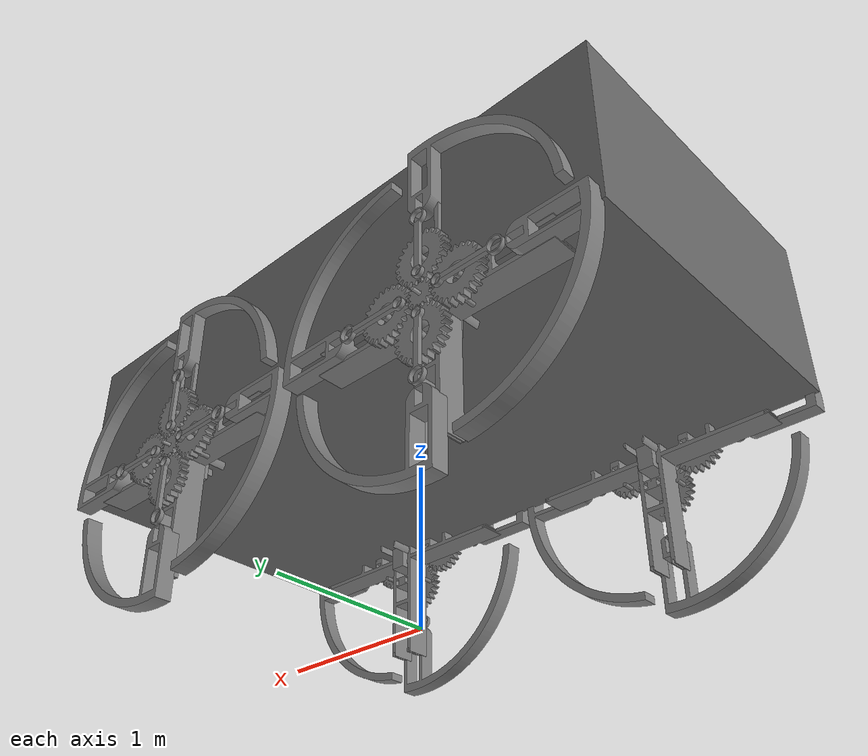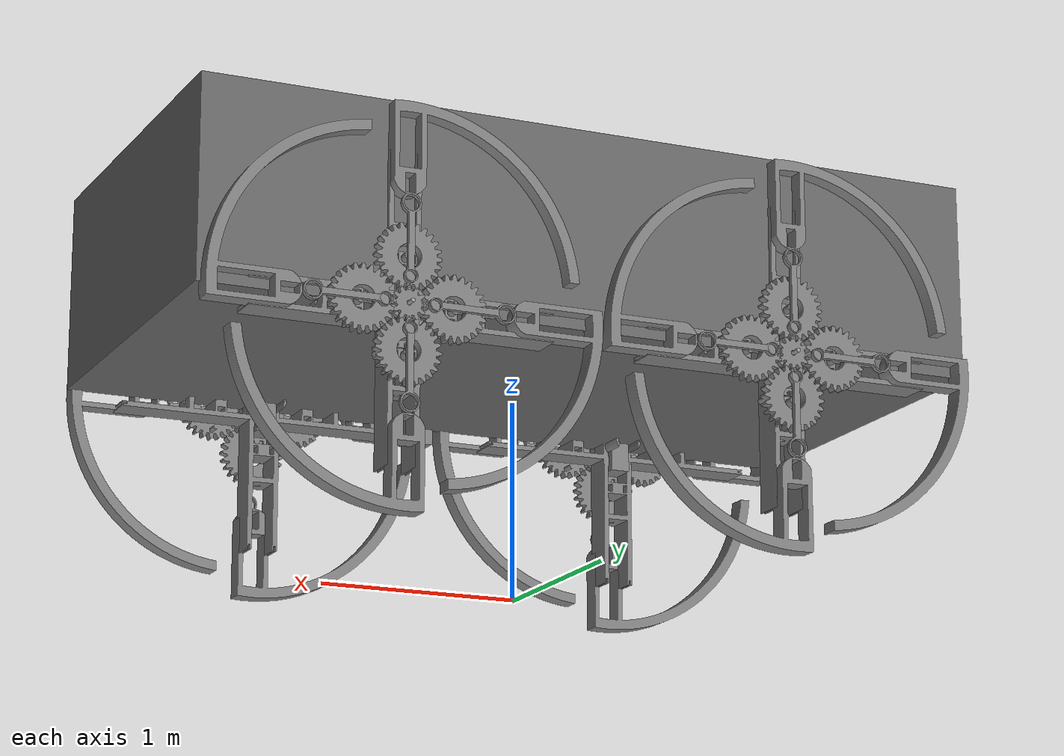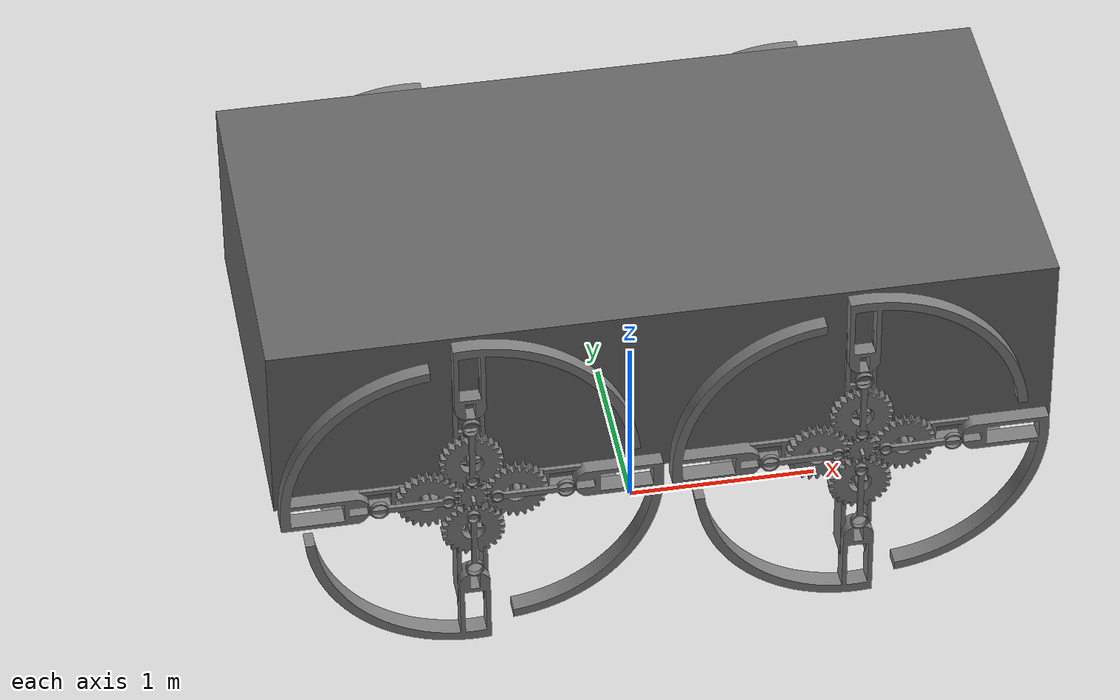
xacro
<?xml version="1.0"?>
<robot xmlns:xacro="http://www.ros.org/wiki/xacro" name="my_robot">
    <xacro:include filename="common_properties.xacro" />
    <xacro:property name="base_length" value="4" />
    <xacro:property name="base_width" value="2" />
    <xacro:property name="base_height" value="1" />
    <xacro:property name="wheel_radius" value="0.1" />
    <xacro:property name="wheel_length" value="0.05" />
  <!-- Base Link -->
    <link name="base_footprint" />
    <link name="base_link">
        <visual>
            <geometry>
                <box size="${base_length} ${base_width} ${base_height}" />
            </geometry>
            <origin xyz="0 0 ${base_height / 2.0}" rpy="0 0 0" />
            <material name="blue" />
        </visual>
        <collision>
            <geometry>
                <box size="${base_length} ${base_width} ${base_height}" />
            </geometry>
            <origin xyz="0 0 ${base_height / 2.0}" rpy="0 0 0" />
        </collision>
        <xacro:box_inertia m="5.0" l="${2*base_length}" w="${2*base_width}" h="${2*base_height}"
                           xyz="0 0 ${base_height / 2.0}" rpy="0 0 0" />
    </link>
    <joint name="base_joint" type="fixed">
        <parent link="base_footprint" />
        <child link="base_link" />
        <origin xyz="0 0 ${wheel_radius+1}" rpy="0 0 0"/>
    </joint>

   <xacro:macro name="wheel" params="dir">
  <link name="${dir}_wheel_link">
    <visual>
      <geometry>
        <cylinder radius="0.01" length="0.2"/>
      </geometry>
    </visual>

    <collision>
      <geometry>
        <cylinder radius="0.01" length="0.2"/>
      </geometry>
    </collision>
    <inertial>
      <mass value="1.0"/>
      <inertia ixx="0.01" ixy="0.0" ixz="0.0" iyy="0.01" iyz="0.0" izz="0.01"/>
    </inertial>
  </link>

  <link name="${dir}_gear_small">
    <visual>
      <geometry>
        <mesh filename="package://my_robot_description/meshes/gear_small.stl" scale="0.005 0.005 0.005"/>
      </geometry>
      <material name="gray">
        <color rgba="0.5 0.5 0.5 1"/>
      </material>
    </visual>
    <collision>
        <geometry>
        <cylinder radius="0.1" length="0.2"/>
      </geometry>
    </collision>
    <inertial>
      <mass value="0.2"/>
      <inertia ixx="0.01" ixy="0.0" ixz="0.0" iyy="0.01" iyz="0.0" izz="0.01"/>
    </inertial>
  </link>

<!--GEAR QUADS-->
  <xacro:macro name="quad" params="num">
    <link name="${dir}_quad${num}">
      <visual>
        <geometry>
          <mesh filename="package://my_robot_description/meshes/wheel_quad.stl" scale="0.005 0.005 0.005"/>
        </geometry>
        <material name="gray">
          <color rgba="0.5 0.5 0.5 1"/>
        </material>
      </visual>
      <collision>
        <geometry>
          <mesh filename="package://my_robot_description/meshes/wheel_quad.stl" scale="0.005 0.005 0.005"/>
        </geometry>
      </collision>
      <inertial>
        <mass value="1.0"/>
        <inertia  ixx="0.1" ixy="0.0" ixz="0.0" iyy="0.1" iyz="0.0" izz="0.1"/>
      </inertial>
    </link>
  </xacro:macro>

<!-- HANDLE -->
  <xacro:macro name="handle" params="num">
    <link name="${dir}_handle${num}">
      <visual>
        <geometry>
          <mesh filename="package://my_robot_description/meshes/handle_v1.stl" scale="0.005 0.005 0.005"/>
        </geometry>
        <material name="gray">
          <color rgba="0.5 0.5 0.5 1"/>
        </material>
      </visual>
      <collision>
        <geometry>
          <cylinder radius="0.01" length="0.2"/>
        </geometry>
      </collision>
      <inertial>
        <mass value="0.3"/>
        <inertia  ixx="0.01" ixy="0.0" ixz="0.0" iyy="0.01" iyz="0.0" izz="0.01"/>
      </inertial>
    </link>
  </xacro:macro>

  <!-- FOR PLUS DESIGN -->
  <link name="${dir}_plus">
    <visual>
      <geometry>
        <mesh filename="package://my_robot_description/meshes/bracket_v1.stl" scale="0.005 0.005 0.005"/>
      </geometry>
      <material name="gray">
        <color rgba="0.5 0.5 0.5 1"/>
      </material>
    </visual>
    <collision>
        <geometry>
        <cylinder radius="0.01" length="0.2"/>
      </geometry>
    </collision>
    <inertial>
      <mass value="0.4"/>
      <inertia  ixx="0.02" ixy="0.0" ixz="0.0" iyy="0.02" iyz="0.0" izz="0.02"/>
    </inertial>
  </link>

  <joint name="${dir}_bases" type="fixed">
    <parent link="${dir}_wheel_link"/>
    <child link="${dir}_plus"/>
    <origin xyz="-0.1 -0.05 -0.16" rpy="0 0 0"/>
  </joint>

<!-- GEAR BIG WITH HANDLE -->
  <xacro:macro name="gear_big" params="num">
    <link name="${dir}_gear_big${num}">
      <visual>
        <geometry>
          <mesh filename="package://my_robot_description/meshes/gear_big.stl" scale="0.005 0.005 0.005"/>
        </geometry>
        <material name="gray">
          <color rgba="0.5 0.5 0.5 1"/>
        </material>
      </visual>
      <collision>
          <geometry>
          <cylinder radius="0.1" length="0.2"/>
        </geometry>
      </collision>
      <inertial>
        <mass value="2.0"/>
        <inertia  ixx="0.2" ixy="0.0" ixz="0.0" iyy="0.2" iyz="0.0" izz="0.2"/>
      </inertial>
    </link>
    <xacro:handle num="${num}"/>
    <joint name="gear_${dir}_handle_${num}" type="fixed">
      <parent link="${dir}_gear_big${num}"/>
      <child link="${dir}_handle${num}"/>
      <origin xyz="0.1 0.0 0.05" rpy="0.0 0.0 0.0"/>
    </joint>
    <xacro:quad num="${num}"/>
    <joint name="${dir}_pris_${num}" type="prismatic">
    <parent link="${dir}_handle${num}"/>
    <child link="${dir}_quad${num}"/>
    <origin xyz="-0.220 0.0 -0.175" rpy="0 0 -1.57"/>
    <axis xyz="0 1 0"/>
    <limit lower="-0.4" upper="-0.163" effort="10" velocity="1.0"/>
    </joint>
  </xacro:macro>

  <xacro:gear_big num="1"/>
  <xacro:gear_big num="2"/>
  <xacro:gear_big num="3"/>
  <xacro:gear_big num="4"/>

  <!-- MOTOR CASING -->
  <link name="${dir}_motor_case">
    <visual>
      <geometry>
        <mesh filename="package://my_robot_description/meshes/motor_casing.stl" scale="0.005 0.005 0.005"/>
      </geometry>
      <material name="gray">
        <color rgba="0.5 0.5 0.5 1"/>
      </material>
    </visual>
    <collision>
        <geometry>
        <cylinder radius="0.01" length="0.2"/>
      </geometry>
    </collision>
    <inertial>
      <mass value="1.5"/>
      <inertia  ixx="0.1" ixy="0.0" ixz="0.0" iyy="0.1" iyz="0.0" izz="0.1"/>
    </inertial>
  </link>

  <!--FOR MOTOR AND GEAR CONNECTION-->
  <xacro:macro name="bracket2" params="num">
  <link name="${dir}_bracket2${num}">
    <visual>
      <geometry>
        <mesh filename="package://my_robot_description/meshes/bracket_v2.stl" scale="0.005 0.005 0.005"/>
      </geometry>
      <material name="gray">
        <color rgba="0.5 0.5 0.5 1"/>
      </material>
    </visual>
    <collision>
            <geometry>
        <cylinder radius="0.01" length="0.2"/>
      </geometry>
    </collision>
    <inertial>
      <mass value="0.5"/>
      <inertia  ixx="0.1" ixy="0.0" ixz="0.0" iyy="0.1" iyz="0.0" izz="0.1"/>
    </inertial>
  </link>
  </xacro:macro>

  <xacro:bracket2 num="1"/>

  <joint name="plus_joint${dir}_" type="fixed">
    <parent link="${dir}_wheel_link"/>
    <child link="${dir}_bracket21"/>
    <origin xyz="0 0 -0.05" rpy="0 0 0"/>

  </joint>

  <joint name="base_${dir}_motor_case" type="fixed">
    <parent link="${dir}_wheel_link"/>
    <child link="${dir}_motor_case"/>
    <origin xyz="0.0 -0.15 0.0" rpy="0 0 0"/>
  </joint>

  <joint name="base_to_${dir}_gear" type="continuous">
    <parent link="${dir}_wheel_link"/>
    <child link="${dir}_gear_small"/>
    <origin xyz="0 0 0" rpy="0 0 0"/>
    <axis xyz="0.0 0.0 1.0"/>
  </joint>

  <joint name="base_to_${dir}_g1" type="continuous">
    <parent link="${dir}_wheel_link"/>
    <child link="${dir}_gear_big1"/>
    <origin xyz="0 0.225 0" rpy="0 0 -1.57"/>
    <axis xyz="0.0 0.0 1.0"/>
  </joint>

  <joint name="base_to_${dir}_g2" type="continuous">
    <parent link="${dir}_wheel_link"/>
    <child link="${dir}_gear_big2"/>
    <origin xyz="0 -0.225 0" rpy="0 0 1.57"/>
    <axis xyz="0.0 0.0 1.0"/>
  </joint>

  <joint name="base_to_${dir}_g3" type="continuous">
    <parent link="${dir}_wheel_link"/>
    <child link="${dir}_gear_big3"/>
    <origin xyz="0.225 -0.0 0" rpy="0 0 3.14"/>
    <axis xyz="0.0 0.0 1.0"/>
  </joint>

  <joint name="base_to_${dir}_g4" type="continuous">
    <parent link="${dir}_wheel_link"/>
    <child link="${dir}_gear_big4"/>
    <origin xyz="-0.225 0.0 0" rpy="0 0 0.0"/>
    <axis xyz="0.0 0.0 1.0"/>
  </joint>
  </xacro:macro>

  <xacro:wheel dir="right"/>
  <xacro:wheel dir="left"/>

    <joint name="base_right_wheel_joint" type="continuous">
        <parent link="base_link" />
        <child link="right_wheel_link" />
        <origin xyz="${-base_length / 4.0} ${-(base_width + wheel_length) / 2.0} 0" rpy="1.57 0 0" />
        <axis xyz="0 1 0" />
    </joint>

    <joint name="base_left_wheel_joint" type="continuous">
        <parent link="base_link" />
        <child link="left_wheel_link" />
        <origin xyz="${-base_length / 4.0} ${(base_width + wheel_length) / 2.0} 0" rpy="1.57 0 3.14" />
        <axis xyz="0 1 0" />
    </joint>

  <xacro:wheel dir="front_right"/>
  <xacro:wheel dir="front_left"/>
    <joint name="base_front_right_wheel_joint" type="continuous">
        <parent link="base_link" />
        <child link="front_right_wheel_link" />
        <origin xyz="${base_length / 4.0} ${-(base_width + wheel_length) / 2.0} 0" rpy="1.57 0 0" />
        <axis xyz="0 1 0" />
    </joint>
    <joint name="base_front_left_wheel_joint" type="continuous">
        <parent link="base_link" />
        <child link="front_left_wheel_link" />
        <origin xyz="${base_length / 4.0} ${(base_width + wheel_length) / 2.0} 0" rpy="1.57 0 3.14" />
        <axis xyz="0 1 0" />
    </joint>

        <gazebo reference="base_link">
        <material>Gazebo/Blue</material>
    </gazebo>

    <gazebo reference="right_wheel_link">
        <material>Gazebo/Grey</material>
    </gazebo>

    <gazebo reference="left_wheel_link">
        <material>Gazebo/Grey</material>
    </gazebo>

    <gazebo reference="front_right_wheel_link">
        <material>Gazebo/Grey</material>
    </gazebo>

    <gazebo reference="front_left_wheel_link">
        <material>Gazebo/Grey</material>
    </gazebo>
    <gazebo>
        <plugin name="diff_drive_controller" filename="libgazebo_ros_diff_drive.so">
            <!-- Update rate in Hz -->
            <update_rate>50</update_rate>
            <!-- wheels -->
            <left_joint>base_left_wheel_joint</left_joint>
            <right_joint>base_right_wheel_joint</right_joint>
            <!-- kinematics -->
            <wheel_separation>0.45</wheel_separation>
            <wheel_diameter>0.2</wheel_diameter>
            <!-- output -->
            <publish_odom>true</publish_odom>
            <publish_odom_tf>true</publish_odom_tf>
            <publish_wheel_tf>true</publish_wheel_tf>
            <odometry_topic>odom</odometry_topic>
            <odometry_frame>odom</odometry_frame>
            <robot_base_frame>base_footprint</robot_base_frame>
        </plugin>
    </gazebo>
</robot>

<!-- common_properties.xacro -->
<robot xmlns:xacro="http://www.ros.org/wiki/xacro">

    <material name="blue">
        <color rgba="0.4 0.4 0.4 1" />
    </material>

    <material name="grey">
        <color rgba="0.5 0.5 0.5 1" />
    </material>

    <xacro:macro name="box_inertia" params="m l w h xyz rpy">
        <inertial>
            <origin xyz="${xyz}" rpy="${rpy}" />
            <mass value="${m}" />
            <inertia ixx="${(m/12) * (h*h + l*l)}" ixy="0" ixz="0"
                     iyy="${(m/12) * (w*w + l*l)}" iyz="0"
                     izz="${(m/12) * (w*w + h*h)}" />
        </inertial>
    </xacro:macro>

    <xacro:macro name="cylinder_inertia" params="m r h xyz rpy">
        <inertial>
            <origin xyz="${xyz}" rpy="${rpy}" />
            <mass value="${m}" />
            <inertia ixx="${(m/12) * (3*r*r + h*h)}" ixy="0" ixz="0"
                     iyy="${(m/12) * (3*r*r + h*h)}" iyz="0"
                     izz="${(m/2) * (r*r)}" />
        </inertial>
    </xacro:macro>

    <xacro:macro name="sphere_inertia" params="m r xyz rpy">
        <inertial>
            <origin xyz="${xyz}" rpy="${rpy}" />
            <mass value="${m}" />
            <inertia ixx="${(2/5) * m * r * r}" ixy="0" ixz="0"
                     iyy="${(2/5) * m * r * r}" iyz="0"
                     izz="${(2/5) * m * r * r}" />
        </inertial>
    </xacro:macro>

</robot>
